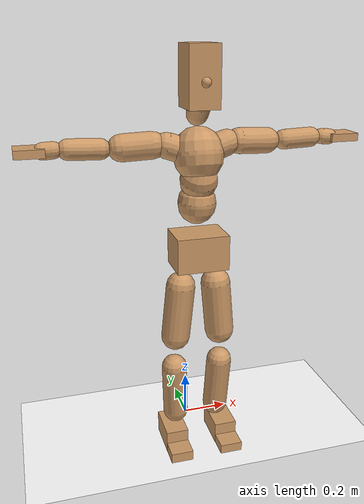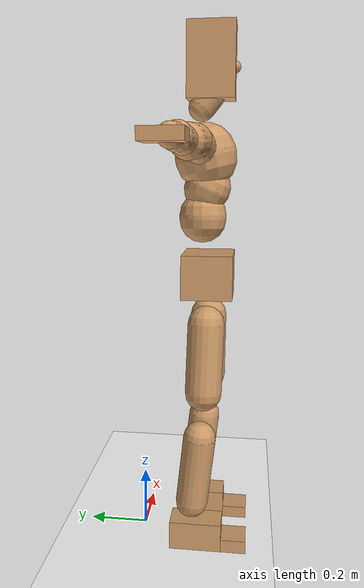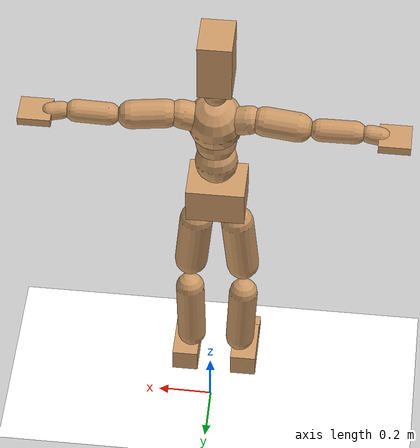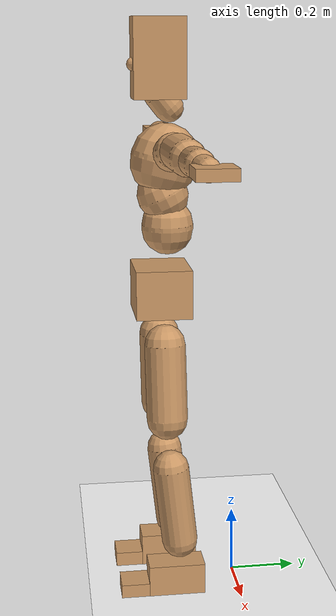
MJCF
<mujoco model="humanoid">
  <option integrator="implicitfast" />

  <visual>
    <global offwidth="1280" offheight="960" />
    <headlight active="1" ambient="0.34 0.34 0.34" diffuse="0.5 0.5 0.5" />
  </visual>

  <default>
    <joint damping="2" stiffness="2" armature="0.01" limited="true" solimplimit="0 .99 .01" />
    <geom condim="1" friction="0.7 0.005 0.0001" solimp=".99 .99 .003" solref="0.015 1" margin="0.001" rgba="0.8 0.6 .4 1" />
    <default class="smplcontact">
      <geom condim="3" friction="1. 0.005 0.0001" solref="0.015 1" solimp="0.98 0.98 0.001" priority="1" />
    </default>
    <default class="stiff_medium">
      <joint stiffness="10" />
    </default>
    <default class="stiff_medium_higher">
      <joint stiffness="50" />
    </default>
    <default class="stiff_high">
      <joint stiffness="100" />
    </default>
  </default>

  <asset>
    <texture type="skybox" builtin="gradient" rgb1="0.99 0.99 0.99" rgb2="0.608 0.828 0.892" width="100" />
    <texture builtin="flat" height="1278" mark="cross" markrgb="1 1 1" name="texgeom" random="0.01" rgb1="0.8 0.6 0.4" rgb2="0.8 0.6 0.4" type="cube" width="127" />
    <texture name="texplane" type="2d" builtin="checker" markrgb="1 1 1" rgb1="0.756 0.772 0.76" rgb2="0.6 0.6 0.6" width="100" height="100" />
    <material name="MatPlane" reflectance="0.5" texture="texplane" texrepeat="1 1" texuniform="true" />
    <material name="geom" texture="texgeom" texuniform="true" />
  </asset>

  <worldbody>
    <light name="tracking_light" pos="0 0 7" dir="0 0 -1" directional="true" cutoff="100" exponent="1" diffuse="1 1 1" specular="0.1 0.1 0.1" mode="trackcom" />
    <camera name="back" pos="0 3 2.4" xyaxes="-1 0 0 0 -1 2" mode="trackcom" />
    <camera name="side" pos="-3 0 2.4" xyaxes="0 -1 0 1 0 2" mode="trackcom" />
    <camera name="front_side" pos="-2.8 -2.8 0.8" xyaxes="0.5 -0.5 0 0.1 0.1 1" mode="trackcom" />
    <geom condim="3" name="floor" pos="0 0 0" rgba="1 1 1 1" size="100 100 .2" type="plane" material="MatPlane" />
    <body name="Pelvis" pos="-0.0018 -0.2233 0.9367" euler="90 0 0">
      <site name="Pelvis" size="0.01" />
      <freejoint name="Pelvis" />
      <geom type="box" pos="-0.0000 -0.0121 -0.0055" size="0.1069 0.0722 0.083" quat="1.0000 0.0000 0.0000 0.0000" density="3165.830099" name="Pelvis" />
      <body name="L_Hip" pos="0.0695 -0.0914 -0.0068">
        <joint name="L_Hip_x" type="hinge" pos="0 0 0" axis="1 0 0" stiffness="10.0" range="-160.0 22.92" class="stiff_medium" damping="15.0" armature="0.01"/>
        <joint name="L_Hip_y" type="hinge" pos="0 0 0" axis="0 1 0" stiffness="10.0" range="-70.0 70.0" class="stiff_medium" damping="10.000000000000002" armature="0.010000000000000007"/>
        <joint name="L_Hip_z" type="hinge" pos="0 0 0" axis="0 0 1" stiffness="10.0" range="-28.65 90.0" class="stiff_medium" damping="9.999999999999998" armature="0.009999999999999998"/>
        <geom type="capsule" density="2040.816327" fromto="0.0069 -0.075 -0.0009 0.0274 -0.3002 -0.0036" size="0.0615" name="L_Hip" />
        <body name="L_Knee" pos="0.0343 -0.3752 -0.0045">
          <joint name="L_Knee_x" type="hinge" pos="0 0 0" axis="1 0 0" range="-5.16 171.89" damping="8.000000000000002" armature="0.010000000000000005" stiffness="2.0"/>
          <joint name="L_Knee_y" type="hinge" pos="0 0 0" axis="0 1 0" range="-4.58 6.88" damping="8.000000000000002" armature="0.010000000000000005" stiffness="2.0"/>
          <joint name="L_Knee_z" type="hinge" pos="0 0 0" axis="0 0 1" range="-6.88 4.58" damping="8.0" armature="0.01" stiffness="2.0"/>
          <geom type="capsule" density="1234.567901" fromto="-0.0027 -0.0796 -0.0087 -0.0109 -0.3184 -0.035" size="0.0541" name="L_Knee" />
          <body name="L_Ankle" pos="-0.0136 -0.398 -0.0437">
            <joint name="L_Ankle_x" type="hinge" pos="0 0 0" axis="1 0 0" range="-45.84 45.84" class="stiff_medium" damping="6.000000000000039" armature="0.010000000000000129" stiffness="10.0"/>
            <joint name="L_Ankle_y" type="hinge" pos="0 0 0" axis="0 1 0" range="-74.48 22.92" class="stiff_medium" damping="3.0" armature="0.010000000000000002" stiffness="10.0"/>
            <joint name="L_Ankle_z" type="hinge" pos="0 0 0" axis="0 0 1" range="-4.58 4.58" class="stiff_medium" damping="6.00000000000012" armature="0.0100000000000004" stiffness="10.0"/>
            <geom type="box" pos="0.0233 -0.0239 0.0242" size="0.0483 0.0464 0.085" quat="1.0000 0.0000 0.0000 0.0000" density="449.071558" name="L_Ankle" class="smplcontact" />
            <body name="L_Toe" pos="0.0264 -0.0558 0.1193">
              <joint name="L_Toe_x" type="hinge" pos="0 0 0" axis="1 0 0" range="-91.67 22.92" armature="0.00999999999999962" damping="1.999999999999962" stiffness="2.0"/>
              <joint name="L_Toe_y" type="hinge" pos="0 0 0" axis="0 1 0" range="-4.58 4.58" armature="0.01" damping="2.0" stiffness="2.0"/>
              <joint name="L_Toe_z" type="hinge" pos="0 0 0" axis="0 0 1" range="-4.58 4.58" armature="0.010000000000000748" damping="2.0000000000000746" stiffness="2.0"/>
              <geom type="box" pos="-0.003 0.0055 0.0248" size="0.0478 0.02 0.0496" quat="1.0000 0.0000 0.0000 0.0000" density="423.206892" name="L_Toe" class="smplcontact" />
            </body>
          </body>
        </body>
      </body>
      <body name="R_Hip" pos="-0.0677 -0.0905 -0.0043">
        <joint name="R_Hip_x" type="hinge" pos="0 0 0" axis="1 0 0" stiffness="10.0" range="-160.0 22.92" class="stiff_medium" damping="15.0" armature="0.01"/>
        <joint name="R_Hip_y" type="hinge" pos="0 0 0" axis="0 1 0" stiffness="10.0" range="-70.0 70.0" class="stiff_medium" damping="10.000000000000002" armature="0.010000000000000007"/>
        <joint name="R_Hip_z" type="hinge" pos="0 0 0" axis="0 0 1" stiffness="10.0" range="-90.0 28.65" class="stiff_medium" damping="9.999999999999998" armature="0.009999999999999998"/>
        <geom type="capsule" density="2040.816327" fromto="-0.0077 -0.0765 -0.0018 -0.0306 -0.3061 -0.0071" size="0.0606" name="R_Hip" />
        <body name="R_Knee" pos="-0.0383 -0.3826 -0.0089">
          <joint name="R_Knee_x" type="hinge" pos="0 0 0" axis="1 0 0" range="-5.16 171.89" damping="8.000000000000002" armature="0.010000000000000005" stiffness="2.0"/>
          <joint name="R_Knee_y" type="hinge" pos="0 0 0" axis="0 1 0" range="-6.88 4.58" damping="8.000000000000002" armature="0.010000000000000005" stiffness="2.0"/>
          <joint name="R_Knee_z" type="hinge" pos="0 0 0" axis="0 0 1" range="-4.58 6.88" damping="8.0" armature="0.01" stiffness="2.0"/>
          <geom type="capsule" density="1234.567901" fromto="0.0032 -0.0797 -0.0085 0.0126 -0.3187 -0.0338" size="0.0541" name="R_Knee" />
          <body name="R_Ankle" pos="0.0158 -0.3984 -0.0423">
            <joint name="R_Ankle_x" type="hinge" pos="0 0 0" axis="1 0 0" range="-45.84 45.84" class="stiff_medium" damping="6.000000000000039" armature="0.010000000000000129" stiffness="10.0"/>
            <joint name="R_Ankle_y" type="hinge" pos="0 0 0" axis="0 1 0" range="-22.92 74.48" class="stiff_medium" damping="3.0" armature="0.010000000000000002" stiffness="10.0"/>
            <joint name="R_Ankle_z" type="hinge" pos="0 0 0" axis="0 0 1" range="-4.58 4.58" class="stiff_medium" damping="6.00000000000012" armature="0.0100000000000004" stiffness="10.0"/>
            <geom type="box" pos="-0.0212 -0.0174 0.0256" size="0.0483 0.0478 0.0865" quat="1.0000 0.0000 0.0000 0.0000" density="434.700981" name="R_Ankle" class="smplcontact" />
            <body name="R_Toe" pos="-0.0254 -0.0481 0.1233">
              <joint name="R_Toe_x" type="hinge" pos="0 0 0" axis="1 0 0" range="-91.67 22.92" armature="0.00999999999999962" damping="1.999999999999962" stiffness="2.0"/>
              <joint name="R_Toe_y" type="hinge" pos="0 0 0" axis="0 1 0" range="-4.58 4.58" armature="0.01" damping="2.0" stiffness="2.0"/>
              <joint name="R_Toe_z" type="hinge" pos="0 0 0" axis="0 0 1" range="-4.58 4.58" armature="0.010000000000000748" damping="2.0000000000000746" stiffness="2.0"/>
              <geom type="box" pos="0.0042 0.0045 0.0227" size="0.0479 0.0216 0.0493" quat="1.0000 0.0000 0.0000 0.0000" density="407.384095" name="R_Toe" class="smplcontact" />
            </body>
          </body>
        </body>
      </body>
      <body name="Torso" pos="-0.0025 0.109 -0.0267">
        <joint name="Torso_x" type="hinge" pos="0 0 0" axis="1 0 0" range="-25.78 57.3" class="stiff_medium" damping="13.810652204593472" armature="0.009092501018959226" stiffness="9.323146326530612"/>
        <joint name="Torso_y" type="hinge" pos="0 0 0" axis="0 1 0" range="-57.3 57.3" class="stiff_high" damping="14.331171543099826" armature="0.005453647751768047" stiffness="94.1491306122449"/>
        <joint name="Torso_z" type="hinge" pos="0 0 0" axis="0 0 1" range="-34.38 34.38" class="stiff_high" damping="17.29833641675788" armature="0.007846444358372215" stiffness="95.34014042553191"/>
        <geom type="capsule" density="2040.816327" fromto="0.0025 0.0608 0.0005 0.003 0.0743 0.0006" size="0.0769" name="Torso" />
        <body name="Spine" pos="0.0055 0.1352 0.0011">
          <joint name="Spine_x" type="hinge" pos="0 0 0" axis="1 0 0" stiffness="9.198122653061224" range="-25.78 57.3" class="stiff_medium" damping="13.62544793240939" armature="0.008970566343267752"/>
          <joint name="Spine_y" type="hinge" pos="0 0 0" axis="0 1 0" stiffness="9.181372040816328" range="-57.3 57.3" class="stiff_high" damping="5.644321396937275" armature="0.005421705337566877"/>
          <joint name="Spine_z" type="hinge" pos="0 0 0" axis="0 0 1" stiffness="18.1392375" range="-34.38 34.38" class="stiff_high" damping="9.559994320421612" armature="0.006997835754189832"/>
          <geom type="capsule" density="2040.816327" fromto="0.0007 0.0238 0.0114 0.0008 0.0291 0.014" size="0.0755" name="Spine" />
          <body name="Chest" pos="0.0015 0.0529 0.0254">
            <joint name="Chest_x" type="hinge" pos="0 0 0" axis="1 0 0" stiffness="8.90027425531915" range="-25.78 57.3" class="stiff_medium" damping="13.356132991200662" armature="0.008907904701027893"/>
            <joint name="Chest_y" type="hinge" pos="0 0 0" axis="0 1 0" stiffness="8.011889047619047" range="-57.3 57.3" class="stiff_high" damping="5.266225064762502" armature="0.005408588385784328"/>
            <joint name="Chest_z" type="hinge" pos="0 0 0" axis="0 0 1" stiffness="18.1318547826087" range="-34.38 34.38" class="stiff_high" damping="9.302458057933912" armature="0.006628583212401057"/>
            <geom type="capsule" density="2040.816327" fromto="-0.0009 0.0682 -0.0173 -0.001 0.0833 -0.0212" size="0.1002" name="Chest" />
            <body name="Neck" pos="-0.0028 0.2139 -0.0429">
              <joint name="Neck_x" type="hinge" pos="0 0 0" axis="1 0 0" range="-28.65 57.3" class="stiff_medium_higher" damping="10.00000000000001" armature="0.010000000000000024" stiffness="50.0"/>
              <joint name="Neck_y" type="hinge" pos="0 0 0" axis="0 1 0" range="-40.11 40.11" class="stiff_medium_higher" damping="10.0" armature="0.01" stiffness="50.0"/>
              <joint name="Neck_z" type="hinge" pos="0 0 0" axis="0 0 1" range="-40.11 40.11" class="stiff_medium_higher" damping="9.999999999999995" armature="0.00999999999999999" stiffness="50.0"/>
              <geom type="capsule" density="1000" fromto="0.001 0.013 0.0103 0.0041 0.052 0.0411" size="0.0436" name="Neck" />
              <body name="Head" pos="0.0052 0.065 0.0513">
                <joint name="Head_x" type="hinge" pos="0 0 0" axis="1 0 0" range="-28.65 57.3" class="stiff_medium_higher" damping="2.000000000000002" armature="0.010000000000000023" stiffness="50.0"/>
                <joint name="Head_y" type="hinge" pos="0 0 0" axis="0 1 0" range="-40.11 40.11" class="stiff_medium_higher" damping="2.0" armature="0.01" stiffness="50.0"/>
                <joint name="Head_z" type="hinge" pos="0 0 0" axis="0 0 1" range="-40.11 40.11" class="stiff_medium_higher" damping="2.0" armature="0.010000000000000002" stiffness="50.0"/>
                <geom type="box" pos="-0.0042 0.0876 -0.0116" size="0.0606 0.1154 0.076" quat="1.0000 0.0000 0.0000 0.0000" density="1018.069894" name="Head" />
                <geom type="capsule" name="nose" size="0.02 0.01" pos="0 0.07 0.05" quat="1 0 0 0" mass="0" contype="0" conaffinity="0" />
              </body>
            </body>
            <body name="L_Thorax" pos="0.06107 0.0943175 -0.0264275">
              <joint name="L_Thorax_x" type="hinge" pos="0 0 0" axis="1 0 0" range="-10.89 4.58" class="stiff_medium_higher" damping="13.43087791250651" armature="0.0067438731053501705" stiffness="33.43562346938776"/>
              <joint name="L_Thorax_y" type="hinge" pos="0 0 0" axis="0 1 0" range="-28.65 17.19" class="stiff_medium_higher" damping="11.843958709758661" armature="0.005279455483598097" stiffness="33.21350051020408"/>
              <joint name="L_Thorax_z" type="hinge" pos="0 0 0" axis="0 0 1" range="-31.51 40.11" class="stiff_medium_higher" damping="11.842904847336024" armature="0.0052781253659509985" stiffness="33.215958673469395"/>
              <geom type="capsule" density="1000" fromto="0.014105 0.0047275 -0.001395 0.05642 0.01891 -0.0055025" size="0.0521" name="L_Thorax" />
              <body name="L_Shoulder" pos="0.070525 0.0236375 -0.0068975">
                <joint name="L_Shoulder_x" type="hinge" pos="0 0 0" axis="1 0 0" range="-97.4 97.4" class="stiff_medium" damping="4.200573869623488" armature="0.007293874713182423" stiffness="6.719801632653062"/>
                <joint name="L_Shoulder_y" type="hinge" pos="0 0 0" axis="0 1 0" range="-108.86 80.21" class="stiff_medium" damping="3.5719924695592944" armature="0.005322246430600954" stiffness="6.659223469387755"/>
                <joint name="L_Shoulder_z" type="hinge" pos="0 0 0" axis="0 0 1" range="-97.4 85.94" class="stiff_medium" damping="3.5723414695273763" armature="0.0053204314495063935" stiffness="6.662796938775511"/>
                <geom type="capsule" density="1000" fromto="0.0402225 -0.002015 -0.0042625 0.160968 -0.007905 -0.01705" size="0.0517" name="L_Shoulder" />
                <body name="L_Elbow" pos="0.20119 -0.00992 -0.0213125">
                  <joint name="L_Elbow_x" type="hinge" pos="0 0 0" axis="1 0 0" range="-17.19 4.58" damping="3.7512094390013595" armature="0.008221713445804513" stiffness="1.3692106734693876"/>
                  <joint name="L_Elbow_y" type="hinge" pos="0 0 0" axis="0 1 0" range="-180.0 17.19" damping="3.0766314110203528" armature="0.005532912421377135" stiffness="1.368633387755102"/>
                  <joint name="L_Elbow_z" type="hinge" pos="0 0 0" axis="0 0 1" range="-100.84 4.58" damping="3.0750834512185676" armature="0.005523383254833443" stiffness="1.3696153673469391"/>
                  <geom type="capsule" density="1000" fromto="0.038595 0.001395 -0.000155 0.154535 0.00558 -0.0006975" size="0.0405" name="L_Elbow" />
                  <body name="L_Wrist" pos="0.19313 0.006975 -0.00093">
                    <joint name="L_Wrist_x" type="hinge" pos="0 0 0" axis="1 0 0" range="-180.0 22.92" armature="0.008602907880090367" damping="1.5994571311849246" stiffness="1.486859530612245"/>
                    <joint name="L_Wrist_y" type="hinge" pos="0 0 0" axis="0 1 0" range="-17.19 17.19" armature="0.006335437662014438" damping="1.368298290323895" stiffness="1.4775934285714285"/>
                    <joint name="L_Wrist_z" type="hinge" pos="0 0 0" axis="0 0 1" range="-22.92 22.92" armature="0.00620619943018472" damping="1.355981958198611" stiffness="1.4813309591836734"/>
                    <geom type="capsule" density="1000" fromto="0.01302 -0.00124 -0.002325 0.05208 -0.0050375 -0.0093" size="0.0318" name="L_Wrist" class="smplcontact" />
                    <body name="L_Hand" pos="0.0651 -0.006355 -0.0115475">
                      <joint name="L_Hand_x" type="hinge" pos="0 0 0" axis="1 0 0" range="-17.19 17.19" armature="0.009826007646420712" damping="1.7452972154880728" stiffness="1.55"/>
                      <joint name="L_Hand_y" type="hinge" pos="0 0 0" axis="0 1 0" range="-51.57 51.57" armature="0.007895802531703777" damping="1.564512315332855" stiffness="1.55"/>
                      <joint name="L_Hand_z" type="hinge" pos="0 0 0" axis="0 0 1" range="-91.67 91.67" armature="0.00738127998582646" damping="1.5126786822078915" stiffness="1.55"/>
                      <geom type="box" pos="0.0382075 0.000775 -0.004495" size="0.0585 0.0158 0.0538" quat="1.0000 0.0000 0.0000 0.0000" density="400.552564" name="L_Hand" class="smplcontact" />
                    </body>
                  </body>
                </body>
              </body>
            </body>
            <body name="R_Thorax" pos="-0.063395 0.09207 -0.029915">
              <joint name="R_Thorax_x" type="hinge" pos="0 0 0" axis="1 0 0" range="-10.89 4.58" class="stiff_medium_higher" damping="13.43087791250651" armature="0.0067438731053501705" stiffness="33.43562346938776"/>
              <joint name="R_Thorax_y" type="hinge" pos="0 0 0" axis="0 1 0" range="-17.19 28.65" class="stiff_medium_higher" damping="11.843958709758661" armature="0.005279455483598097" stiffness="33.21350051020408"/>
              <joint name="R_Thorax_z" type="hinge" pos="0 0 0" axis="0 0 1" range="-40.11 31.51" class="stiff_medium_higher" damping="11.842904847336024" armature="0.0052781253659509985" stiffness="33.215958673469395"/>
              <geom type="capsule" density="1000" fromto="-0.01488 0.0050375 -0.001395 -0.05952 0.02015 -0.0056575" size="0.0511" name="R_Thorax" />
              <body name="R_Shoulder" pos="-0.0744 0.025265 -0.0070525">
                <joint name="R_Shoulder_x" type="hinge" pos="0 0 0" axis="1 0 0" range="-97.4 97.4" class="stiff_medium" damping="4.200573869623488" armature="0.007293874713182423" stiffness="6.719801632653062"/>
                <joint name="R_Shoulder_y" type="hinge" pos="0 0 0" axis="0 1 0" range="-80.21 108.86" class="stiff_medium" damping="3.5719924695592944" armature="0.005322246430600954" stiffness="6.659223469387755"/>
                <joint name="R_Shoulder_z" type="hinge" pos="0 0 0" axis="0 0 1" range="-85.94 97.4" class="stiff_medium" damping="3.5723414695273763" armature="0.0053204314495063935" stiffness="6.662796938775511"/>
                <geom type="capsule" density="1000" fromto="-0.0392925 -0.0020925 -0.0033325 -0.157325 -0.0082925 -0.0132525" size="0.0531" name="R_Shoulder" />
                <body name="R_Elbow" pos="-0.196618 -0.0103075 -0.016585">
                  <joint name="R_Elbow_x" type="hinge" pos="0 0 0" axis="1 0 0" range="-17.19 4.58" damping="3.7512094390013595" armature="0.008221713445804513" stiffness="1.3692106734693876"/>
                  <joint name="R_Elbow_y" type="hinge" pos="0 0 0" axis="0 1 0" range="-17.19 180.0" damping="3.0766314110203528" armature="0.005532912421377135" stiffness="1.368633387755102"/>
                  <joint name="R_Elbow_z" type="hinge" pos="0 0 0" axis="0 0 1" range="-4.58 100.84" damping="3.0750834512185676" armature="0.005523383254833443" stiffness="1.3696153673469391"/>
                  <geom type="capsule" density="1000" fromto="-0.0396025 0.00124 -0.0008525 -0.158255 0.004805 -0.00341" size="0.0408" name="R_Elbow" />
                  <body name="R_Wrist" pos="-0.197858 0.006045 -0.00434">
                    <joint name="R_Wrist_x" type="hinge" pos="0 0 0" axis="1 0 0" range="-180.0 22.92" armature="0.008602907880090367" damping="1.5994571311849246" stiffness="1.486859530612245"/>
                    <joint name="R_Wrist_y" type="hinge" pos="0 0 0" axis="0 1 0" range="-17.19 17.19" armature="0.006335437662014438" damping="1.368298290323895" stiffness="1.4775934285714285"/>
                    <joint name="R_Wrist_z" type="hinge" pos="0 0 0" axis="0 0 1" range="-22.92 22.92" armature="0.00620619943018472" damping="1.355981958198611" stiffness="1.4813309591836734"/>
                    <geom type="capsule" density="1000" fromto="-0.0130975 -0.00093 -0.0016275 -0.0524675 -0.0037975 -0.0064325" size="0.0326" name="R_Wrist" class="smplcontact" />
                    <body name="R_Hand" pos="-0.065565 -0.0047275 -0.0079825">
                      <joint name="R_Hand_x" type="hinge" pos="0 0 0" axis="1 0 0" range="-17.19 17.19" armature="0.009826007646420712" damping="1.7452972154880728" stiffness="1.55"/>
                      <joint name="R_Hand_y" type="hinge" pos="0 0 0" axis="0 1 0" range="-51.57 51.57" armature="0.007895802531703777" damping="1.564512315332855" stiffness="1.55"/>
                      <joint name="R_Hand_z" type="hinge" pos="0 0 0" axis="0 0 1" range="-91.67 91.67" armature="0.00738127998582646" damping="1.5126786822078915" stiffness="1.55"/>
                      <geom type="box" pos="-0.035805 -0.0006975 -0.0061225" size="0.0569 0.0164 0.0546" quat="1.0000 0.0000 0.0000 0.0000" density="403.679611" name="R_Hand" class="smplcontact" />
                    </body>
                  </body>
                </body>
              </body>
            </body>
          </body>
        </body>
      </body>
    </body>
  </worldbody>
  <actuator>
    <general name="L_Hip_x" joint="L_Hip_x" biastype="affine" gainprm="287.33006409732246" biasprm="-215.3247604770444 -180.0 -2.0" ctrllimited="true" ctrlrange="-1 1" forcerange="-360.0 360.0" />
    <general name="L_Hip_y" joint="L_Hip_y" biastype="affine" gainprm="219.9114857512855" biasprm="0.0 -180.0 -2.0000000000000004" ctrllimited="true" ctrlrange="-1 1" forcerange="-360.0 360.0" />
    <general name="L_Hip_z" joint="L_Hip_z" biastype="affine" gainprm="186.3749841742145" biasprm="96.3683546488669 -180.0 -1.9999999999999998" ctrllimited="true" ctrlrange="-1 1" forcerange="-360.0 360.0" />
    <general name="L_Knee_x" joint="L_Knee_x" biastype="affine" gainprm="278.10948965903646" biasprm="261.8988715665131 -180.0 -2.0000000000000004" ctrllimited="true" ctrlrange="-1 1" forcerange="-360.0 360.0" />
    <general name="L_Knee_y" joint="L_Knee_y" biastype="affine" gainprm="18.001325905069514" biasprm="3.612831551628262 -180.0 -2.0000000000000004" ctrllimited="true" ctrlrange="-1 1" forcerange="-360.0 360.0" />
    <general name="L_Knee_z" joint="L_Knee_z" biastype="affine" gainprm="18.001325905069514" biasprm="-3.612831551628262 -180.0 -2.0" ctrllimited="true" ctrlrange="-1 1" forcerange="-360.0 360.0" />
    <general name="L_Ankle_x" joint="L_Ankle_x" biastype="affine" gainprm="72.00530362027807" biasprm="0.0 -90.0 -2.000000000000013" ctrllimited="true" ctrlrange="-1 1" forcerange="-180.0 180.0" />
    <general name="L_Ankle_y" joint="L_Ankle_y" biastype="affine" gainprm="76.49778111491148" biasprm="-40.49512930477244 -90.0 -2.0" ctrllimited="true" ctrlrange="-1 1" forcerange="-180.0 180.0" />
    <general name="L_Ankle_z" joint="L_Ankle_z" biastype="affine" gainprm="7.1942471767206255" biasprm="0.0 -90.0 -2.00000000000004" ctrllimited="true" ctrlrange="-1 1" forcerange="-180.0 180.0" />
    <general name="L_Toe_x" joint="L_Toe_x" biastype="affine" gainprm="71.99902043497087" biasprm="-43.19689898685965 -72.0 -0.7999999999999848" ctrllimited="true" ctrlrange="-1 1" forcerange="-144.0 144.0" />
    <general name="L_Toe_y" joint="L_Toe_y" biastype="affine" gainprm="5.755397741376501" biasprm="0.0 -72.0 -0.8" ctrllimited="true" ctrlrange="-1 1" forcerange="-144.0 144.0" />
    <general name="L_Toe_z" joint="L_Toe_z" biastype="affine" gainprm="5.755397741376501" biasprm="0.0 -72.0 -0.8000000000000299" ctrllimited="true" ctrlrange="-1 1" forcerange="-144.0 144.0" />
    <general name="R_Hip_x" joint="R_Hip_x" biastype="affine" gainprm="287.33006409732246" biasprm="-215.3247604770444 -180.0 -2.0" ctrllimited="true" ctrlrange="-1 1" forcerange="-360.0 360.0" />
    <general name="R_Hip_y" joint="R_Hip_y" biastype="affine" gainprm="219.9114857512855" biasprm="0.0 -180.0 -2.0000000000000004" ctrllimited="true" ctrlrange="-1 1" forcerange="-360.0 360.0" />
    <general name="R_Hip_z" joint="R_Hip_z" biastype="affine" gainprm="186.3749841742145" biasprm="-96.3683546488669 -180.0 -1.9999999999999998" ctrllimited="true" ctrlrange="-1 1" forcerange="-360.0 360.0" />
    <general name="R_Knee_x" joint="R_Knee_x" biastype="affine" gainprm="278.10948965903646" biasprm="261.8988715665131 -180.0 -2.0000000000000004" ctrllimited="true" ctrlrange="-1 1" forcerange="-360.0 360.0" />
    <general name="R_Knee_y" joint="R_Knee_y" biastype="affine" gainprm="18.001325905069514" biasprm="-3.612831551628262 -180.0 -2.0000000000000004" ctrllimited="true" ctrlrange="-1 1" forcerange="-360.0 360.0" />
    <general name="R_Knee_z" joint="R_Knee_z" biastype="affine" gainprm="18.001325905069514" biasprm="3.612831551628262 -180.0 -2.0" ctrllimited="true" ctrlrange="-1 1" forcerange="-360.0 360.0" />
    <general name="R_Ankle_x" joint="R_Ankle_x" biastype="affine" gainprm="72.00530362027807" biasprm="0.0 -90.0 -2.000000000000013" ctrllimited="true" ctrlrange="-1 1" forcerange="-180.0 180.0" />
    <general name="R_Ankle_y" joint="R_Ankle_y" biastype="affine" gainprm="76.49778111491148" biasprm="40.49512930477244 -90.0 -2.0" ctrllimited="true" ctrlrange="-1 1" forcerange="-180.0 180.0" />
    <general name="R_Ankle_z" joint="R_Ankle_z" biastype="affine" gainprm="7.1942471767206255" biasprm="0.0 -90.0 -2.00000000000004" ctrllimited="true" ctrlrange="-1 1" forcerange="-180.0 180.0" />
    <general name="R_Toe_x" joint="R_Toe_x" biastype="affine" gainprm="71.99902043497087" biasprm="-43.19689898685965 -72.0 -0.7999999999999848" ctrllimited="true" ctrlrange="-1 1" forcerange="-144.0 144.0" />
    <general name="R_Toe_y" joint="R_Toe_y" biastype="affine" gainprm="5.755397741376501" biasprm="0.0 -72.0 -0.8" ctrllimited="true" ctrlrange="-1 1" forcerange="-144.0 144.0" />
    <general name="R_Toe_z" joint="R_Toe_z" biastype="affine" gainprm="5.755397741376501" biasprm="0.0 -72.0 -0.8000000000000299" ctrllimited="true" ctrlrange="-1 1" forcerange="-144.0 144.0" />
    <general name="Torso_x" joint="Torso_x" biastype="affine" gainprm="162.2249324590423" biasprm="61.54706152032995 -223.7555118367347 -3.6828405878915924" ctrllimited="true" ctrlrange="-1 1" forcerange="-335.63326775510205 335.63326775510205" />
    <general name="Torso_y" joint="Torso_y" biastype="affine" gainprm="225.974557843997" biasprm="0.0 -225.95791346938776 -2.866234308619965" ctrllimited="true" ctrlrange="-1 1" forcerange="-338.93687020408163 338.93687020408163" />
    <general name="Torso_z" joint="Torso_z" biastype="affine" gainprm="137.29991517080745" biasprm="0.0 -228.8163370212766 -3.459667283351576" ctrllimited="true" ctrlrange="-1 1" forcerange="-343.2245055319149 343.2245055319149" />
    <general name="Spine_x" joint="Spine_x" biastype="affine" gainprm="160.04949122128795" biasprm="60.721713568789056 -220.7549436734694 -3.633452781975837" ctrllimited="true" ctrlrange="-1 1" forcerange="-331.1324155102041 331.1324155102041" />
    <general name="Spine_y" joint="Spine_y" biastype="affine" gainprm="220.36916048323718" biasprm="0.0 -220.35292897959184 -2.8221606984686374" ctrllimited="true" ctrlrange="-1 1" forcerange="-330.52939346938774 330.52939346938774" />
    <general name="Spine_z" joint="Spine_z" biastype="affine" gainprm="130.61213036278338" biasprm="0.0 -217.67085 -3.186664773473871" ctrllimited="true" ctrlrange="-1 1" forcerange="-326.506275 326.506275" />
    <general name="Chest_x" joint="Chest_x" biastype="affine" gainprm="154.86685925194476" biasprm="58.7554574340551 -213.6065821276596 -3.5616354643201764" ctrllimited="true" ctrlrange="-1 1" forcerange="-320.4098731914894 320.4098731914894" />
    <general name="Chest_y" joint="Chest_y" biastype="affine" gainprm="192.29950114859662" biasprm="0.0 -192.28533714285712 -2.633112532381251" ctrllimited="true" ctrlrange="-1 1" forcerange="-288.4280057142857 288.4280057142857" />
    <general name="Chest_z" joint="Chest_z" biastype="affine" gainprm="130.55897088205305" biasprm="0.0 -217.58225739130438 -3.100819352644637" ctrllimited="true" ctrlrange="-1 1" forcerange="-326.37338608695654 326.37338608695654" />
    <general name="Neck_x" joint="Neck_x" biastype="affine" gainprm="27.00198885760427" biasprm="9.000662952534757 -36.0 -0.8000000000000009" ctrllimited="true" ctrlrange="-1 1" forcerange="-72.0 72.0" />
    <general name="Neck_y" joint="Neck_y" biastype="affine" gainprm="25.20185626709732" biasprm="0.0 -36.0 -0.8" ctrllimited="true" ctrlrange="-1 1" forcerange="-72.0 72.0" />
    <general name="Neck_z" joint="Neck_z" biastype="affine" gainprm="25.20185626709732" biasprm="0.0 -36.0 -0.7999999999999996" ctrllimited="true" ctrlrange="-1 1" forcerange="-72.0 72.0" />
    <general name="Head_x" joint="Head_x" biastype="affine" gainprm="18.001325905069514" biasprm="6.000441968356505 -24.0 -0.8000000000000009" ctrllimited="true" ctrlrange="-1 1" forcerange="-48.0 48.0" />
    <general name="Head_y" joint="Head_y" biastype="affine" gainprm="16.801237511398213" biasprm="0.0 -24.0 -0.8" ctrllimited="true" ctrlrange="-1 1" forcerange="-48.0 48.0" />
    <general name="Head_z" joint="Head_z" biastype="affine" gainprm="16.801237511398213" biasprm="0.0 -24.0 -0.8" ctrllimited="true" ctrlrange="-1 1" forcerange="-48.0 48.0" />
    <general name="L_Thorax_x" joint="L_Thorax_x" biastype="affine" gainprm="10.833239714349121" biasprm="-4.4187293211081435 -80.24549632653061 -1.0744702330005207" ctrllimited="true" ctrlrange="-1 1" forcerange="-160.49099265306123 160.49099265306123" />
    <general name="L_Thorax_y" joint="L_Thorax_y" biastype="affine" gainprm="31.887309180393395" biasprm="-7.971827295098349 -79.71240122448978 -0.947516696780693" ctrllimited="true" ctrlrange="-1 1" forcerange="-159.42480244897956 159.42480244897956" />
    <general name="L_Thorax_z" joint="L_Thorax_z" biastype="affine" gainprm="49.8241297438119" biasprm="5.98279134036278 -79.71830081632655 -0.947432387786882" ctrllimited="true" ctrlrange="-1 1" forcerange="-159.4366016326531 159.4366016326531" />
    <general name="L_Shoulder_x" joint="L_Shoulder_x" biastype="affine" gainprm="54.831990872567324" biasprm="0.0 -32.2550478367347 -1.120153031899597" ctrllimited="true" ctrlrange="-1 1" forcerange="-64.5100956734694 64.5100956734694" />
    <general name="L_Shoulder_y" joint="L_Shoulder_y" biastype="affine" gainprm="52.739356038732126" biasprm="-7.9916567964757785 -31.964272653061222 -0.952531325215812" ctrllimited="true" ctrlrange="-1 1" forcerange="-63.928545306122444 63.928545306122444" />
    <general name="L_Shoulder_z" joint="L_Shoulder_z" biastype="affine" gainprm="51.16846795221352" biasprm="-3.1983781102452724 -31.98142530612245 -0.9526243918739671" ctrllimited="true" ctrlrange="-1 1" forcerange="-63.9628506122449 63.9628506122449" />
    <general name="L_Elbow_x" joint="L_Elbow_x" biastype="affine" gainprm="9.364370274135227" biasprm="-5.424194265358073 -49.291584244897955 -0.6001935102402176" ctrllimited="true" ctrlrange="-1 1" forcerange="-98.58316848979591 98.58316848979591" />
    <general name="L_Elbow_y" joint="L_Elbow_y" biastype="affine" gainprm="84.78555943298619" biasprm="-70.00323003846282 -49.27080195918367 -0.4922610257632565" ctrllimited="true" ctrlrange="-1 1" forcerange="-98.54160391836734 98.54160391836734" />
    <general name="L_Elbow_z" joint="L_Elbow_z" biastype="affine" gainprm="45.359839041363344" biasprm="-41.41849844547179 -49.306153224489805 -0.49201335219497083" ctrllimited="true" ctrlrange="-1 1" forcerange="-98.61230644897961 98.61230644897961" />
    <general name="L_Wrist_x" joint="L_Wrist_x" biastype="affine" gainprm="15.797683800581504" biasprm="-12.228958069166877 -8.92115718367347 -0.6397828524739699" ctrllimited="true" ctrlrange="-1 1" forcerange="-17.84231436734694 17.84231436734694" />
    <general name="L_Wrist_y" joint="L_Wrist_y" biastype="affine" gainprm="2.659864086290334" biasprm="0.0 -8.86556057142857 -0.547319316129558" ctrllimited="true" ctrlrange="-1 1" forcerange="-17.73112114285714 17.73112114285714" />
    <general name="L_Wrist_z" joint="L_Wrist_z" biastype="affine" gainprm="3.5554561826046047" biasprm="0.0 -8.88798575510204 -0.5423927832794444" ctrllimited="true" ctrlrange="-1 1" forcerange="-17.77597151020408 17.77597151020408" />
    <general name="L_Hand_x" joint="L_Hand_x" biastype="affine" gainprm="2.7902055152857757" biasprm="0.0 -9.3 -0.6981188861952292" ctrllimited="true" ctrlrange="-1 1" forcerange="-18.6 18.6" />
    <general name="L_Hand_y" joint="L_Hand_y" biastype="affine" gainprm="8.370616545857324" biasprm="0.0 -9.3 -0.6258049261331421" ctrllimited="true" ctrlrange="-1 1" forcerange="-18.6 18.6" />
    <general name="L_Hand_z" joint="L_Hand_z" biastype="affine" gainprm="14.879472925319778" biasprm="0.0 -9.3 -0.6050714728831567" ctrllimited="true" ctrlrange="-1 1" forcerange="-18.6 18.6" />
    <general name="R_Thorax_x" joint="R_Thorax_x" biastype="affine" gainprm="10.833239714349121" biasprm="-4.4187293211081435 -80.24549632653061 -1.0744702330005207" ctrllimited="true" ctrlrange="-1 1" forcerange="-160.49099265306123 160.49099265306123" />
    <general name="R_Thorax_y" joint="R_Thorax_y" biastype="affine" gainprm="31.887309180393395" biasprm="7.971827295098343 -79.71240122448978 -0.947516696780693" ctrllimited="true" ctrlrange="-1 1" forcerange="-159.42480244897956 159.42480244897956" />
    <general name="R_Thorax_z" joint="R_Thorax_z" biastype="affine" gainprm="49.8241297438119" biasprm="-5.98279134036278 -79.71830081632655 -0.947432387786882" ctrllimited="true" ctrlrange="-1 1" forcerange="-159.4366016326531 159.4366016326531" />
    <general name="R_Shoulder_x" joint="R_Shoulder_x" biastype="affine" gainprm="54.831990872567324" biasprm="0.0 -32.2550478367347 -1.120153031899597" ctrllimited="true" ctrlrange="-1 1" forcerange="-64.5100956734694 64.5100956734694" />
    <general name="R_Shoulder_y" joint="R_Shoulder_y" biastype="affine" gainprm="52.739356038732126" biasprm="7.9916567964757785 -31.964272653061222 -0.952531325215812" ctrllimited="true" ctrlrange="-1 1" forcerange="-63.928545306122444 63.928545306122444" />
    <general name="R_Shoulder_z" joint="R_Shoulder_z" biastype="affine" gainprm="51.16846795221352" biasprm="3.1983781102452653 -31.98142530612245 -0.9526243918739671" ctrllimited="true" ctrlrange="-1 1" forcerange="-63.9628506122449 63.9628506122449" />
    <general name="R_Elbow_x" joint="R_Elbow_x" biastype="affine" gainprm="9.364370274135227" biasprm="-5.424194265358073 -49.291584244897955 -0.6001935102402176" ctrllimited="true" ctrlrange="-1 1" forcerange="-98.58316848979591 98.58316848979591" />
    <general name="R_Elbow_y" joint="R_Elbow_y" biastype="affine" gainprm="84.78555943298619" biasprm="70.00323003846282 -49.27080195918367 -0.4922610257632565" ctrllimited="true" ctrlrange="-1 1" forcerange="-98.54160391836734 98.54160391836734" />
    <general name="R_Elbow_z" joint="R_Elbow_z" biastype="affine" gainprm="45.359839041363344" biasprm="41.41849844547178 -49.306153224489805 -0.49201335219497083" ctrllimited="true" ctrlrange="-1 1" forcerange="-98.61230644897961 98.61230644897961" />
    <general name="R_Wrist_x" joint="R_Wrist_x" biastype="affine" gainprm="15.797683800581504" biasprm="-12.228958069166877 -8.92115718367347 -0.6397828524739699" ctrllimited="true" ctrlrange="-1 1" forcerange="-17.84231436734694 17.84231436734694" />
    <general name="R_Wrist_y" joint="R_Wrist_y" biastype="affine" gainprm="2.659864086290334" biasprm="0.0 -8.86556057142857 -0.547319316129558" ctrllimited="true" ctrlrange="-1 1" forcerange="-17.73112114285714 17.73112114285714" />
    <general name="R_Wrist_z" joint="R_Wrist_z" biastype="affine" gainprm="3.5554561826046047" biasprm="0.0 -8.88798575510204 -0.5423927832794444" ctrllimited="true" ctrlrange="-1 1" forcerange="-17.77597151020408 17.77597151020408" />
    <general name="R_Hand_x" joint="R_Hand_x" biastype="affine" gainprm="2.7902055152857757" biasprm="0.0 -9.3 -0.6981188861952292" ctrllimited="true" ctrlrange="-1 1" forcerange="-18.6 18.6" />
    <general name="R_Hand_y" joint="R_Hand_y" biastype="affine" gainprm="8.370616545857324" biasprm="0.0 -9.3 -0.6258049261331421" ctrllimited="true" ctrlrange="-1 1" forcerange="-18.6 18.6" />
    <general name="R_Hand_z" joint="R_Hand_z" biastype="affine" gainprm="14.879472925319778" biasprm="0.0 -9.3 -0.6050714728831567" ctrllimited="true" ctrlrange="-1 1" forcerange="-18.6 18.6" />
  </actuator>
  <contact>
    <exclude body1="Torso" body2="Chest" />
    <exclude body1="Head" body2="Chest" />
    <exclude body1="R_Knee" body2="R_Toe" />
    <exclude body1="R_Knee" body2="L_Ankle" />
    <exclude body1="R_Knee" body2="L_Toe" />
    <exclude body1="L_Knee" body2="L_Toe" />
    <exclude body1="L_Knee" body2="R_Ankle" />
    <exclude body1="L_Knee" body2="R_Toe" />
    <exclude body1="L_Shoulder" body2="Chest" />
    <exclude body1="R_Shoulder" body2="Chest" />
  </contact>
  <sensor>
    <framelinvel name="sensor_Pelvis_framelinvel" objtype="xbody" objname="Pelvis" />
    <framelinvel name="sensor_L_Hip_framelinvel" objtype="xbody" objname="L_Hip" />
    <framelinvel name="sensor_L_Knee_framelinvel" objtype="xbody" objname="L_Knee" />
    <framelinvel name="sensor_L_Ankle_framelinvel" objtype="xbody" objname="L_Ankle" />
    <framelinvel name="sensor_L_Toe_framelinvel" objtype="xbody" objname="L_Toe" />
    <framelinvel name="sensor_R_Hip_framelinvel" objtype="xbody" objname="R_Hip" />
    <framelinvel name="sensor_R_Knee_framelinvel" objtype="xbody" objname="R_Knee" />
    <framelinvel name="sensor_R_Ankle_framelinvel" objtype="xbody" objname="R_Ankle" />
    <framelinvel name="sensor_R_Toe_framelinvel" objtype="xbody" objname="R_Toe" />
    <framelinvel name="sensor_Torso_framelinvel" objtype="xbody" objname="Torso" />
    <framelinvel name="sensor_Spine_framelinvel" objtype="xbody" objname="Spine" />
    <framelinvel name="sensor_Chest_framelinvel" objtype="xbody" objname="Chest" />
    <framelinvel name="sensor_Neck_framelinvel" objtype="xbody" objname="Neck" />
    <framelinvel name="sensor_Head_framelinvel" objtype="xbody" objname="Head" />
    <framelinvel name="sensor_L_Thorax_framelinvel" objtype="xbody" objname="L_Thorax" />
    <framelinvel name="sensor_L_Shoulder_framelinvel" objtype="xbody" objname="L_Shoulder" />
    <framelinvel name="sensor_L_Elbow_framelinvel" objtype="xbody" objname="L_Elbow" />
    <framelinvel name="sensor_L_Wrist_framelinvel" objtype="xbody" objname="L_Wrist" />
    <framelinvel name="sensor_L_Hand_framelinvel" objtype="xbody" objname="L_Hand" />
    <framelinvel name="sensor_R_Thorax_framelinvel" objtype="xbody" objname="R_Thorax" />
    <framelinvel name="sensor_R_Shoulder_framelinvel" objtype="xbody" objname="R_Shoulder" />
    <framelinvel name="sensor_R_Elbow_framelinvel" objtype="xbody" objname="R_Elbow" />
    <framelinvel name="sensor_R_Wrist_framelinvel" objtype="xbody" objname="R_Wrist" />
    <framelinvel name="sensor_R_Hand_framelinvel" objtype="xbody" objname="R_Hand" />
    <frameangvel name="sensor_Pelvis_frameangvel" objtype="xbody" objname="Pelvis" />
    <frameangvel name="sensor_L_Hip_frameangvel" objtype="xbody" objname="L_Hip" />
    <frameangvel name="sensor_L_Knee_frameangvel" objtype="xbody" objname="L_Knee" />
    <frameangvel name="sensor_L_Ankle_frameangvel" objtype="xbody" objname="L_Ankle" />
    <frameangvel name="sensor_L_Toe_frameangvel" objtype="xbody" objname="L_Toe" />
    <frameangvel name="sensor_R_Hip_frameangvel" objtype="xbody" objname="R_Hip" />
    <frameangvel name="sensor_R_Knee_frameangvel" objtype="xbody" objname="R_Knee" />
    <frameangvel name="sensor_R_Ankle_frameangvel" objtype="xbody" objname="R_Ankle" />
    <frameangvel name="sensor_R_Toe_frameangvel" objtype="xbody" objname="R_Toe" />
    <frameangvel name="sensor_Torso_frameangvel" objtype="xbody" objname="Torso" />
    <frameangvel name="sensor_Spine_frameangvel" objtype="xbody" objname="Spine" />
    <frameangvel name="sensor_Chest_frameangvel" objtype="xbody" objname="Chest" />
    <frameangvel name="sensor_Neck_frameangvel" objtype="xbody" objname="Neck" />
    <frameangvel name="sensor_Head_frameangvel" objtype="xbody" objname="Head" />
    <frameangvel name="sensor_L_Thorax_frameangvel" objtype="xbody" objname="L_Thorax" />
    <frameangvel name="sensor_L_Shoulder_frameangvel" objtype="xbody" objname="L_Shoulder" />
    <frameangvel name="sensor_L_Elbow_frameangvel" objtype="xbody" objname="L_Elbow" />
    <frameangvel name="sensor_L_Wrist_frameangvel" objtype="xbody" objname="L_Wrist" />
    <frameangvel name="sensor_L_Hand_frameangvel" objtype="xbody" objname="L_Hand" />
    <frameangvel name="sensor_R_Thorax_frameangvel" objtype="xbody" objname="R_Thorax" />
    <frameangvel name="sensor_R_Shoulder_frameangvel" objtype="xbody" objname="R_Shoulder" />
    <frameangvel name="sensor_R_Elbow_frameangvel" objtype="xbody" objname="R_Elbow" />
    <frameangvel name="sensor_R_Wrist_frameangvel" objtype="xbody" objname="R_Wrist" />
    <frameangvel name="sensor_R_Hand_frameangvel" objtype="xbody" objname="R_Hand" />
    <subtreelinvel name="Chest_subtreelinvel" body="Chest" />
    <gyro name="Pelvis_gyro" site="Pelvis" />
  </sensor>
</mujoco>
